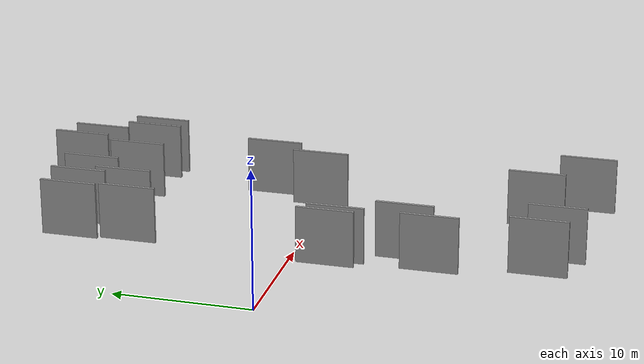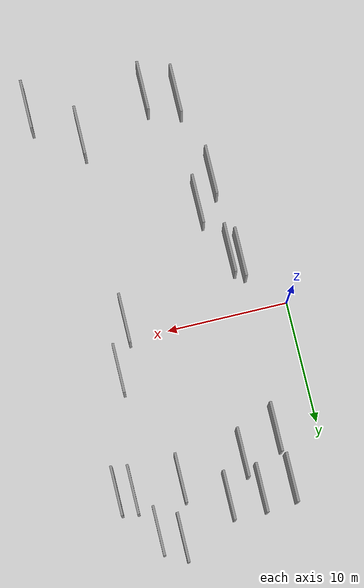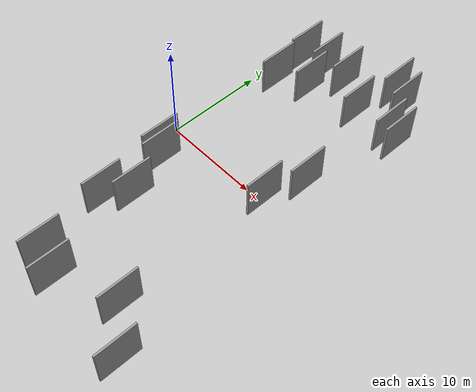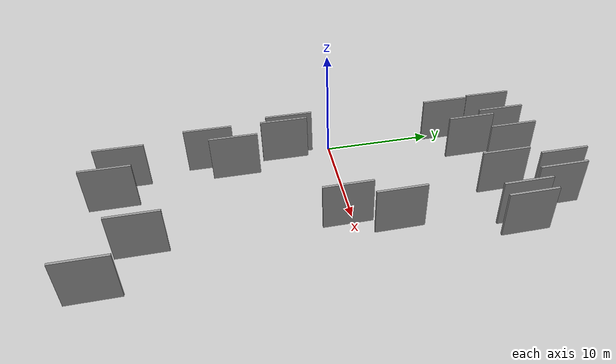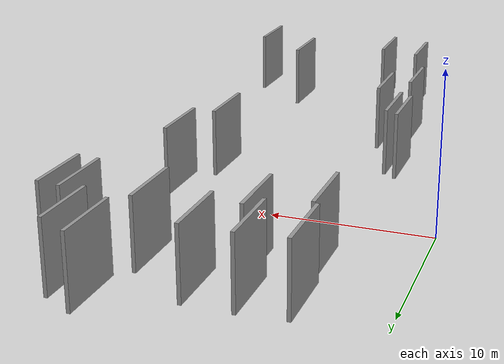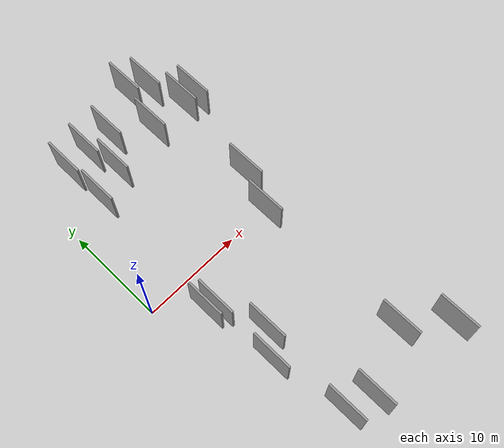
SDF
<sdf version="1.6">
 <world name="default">
  <scene>
   <sky><clouds><speed>12</speed></clouds></sky>
   <ambient>0.4 0.4 0.4 1</ambient>
   <background>0.7 0.7 0.7 1</background>
   <shadows>1</shadows>
  </scene>
  <gravity>0 0 -9.8066</gravity>
  <magnetic_field>6e-06 2.3e-05 -4.2e-05</magnetic_field>
  <physics default="0" name="default_physics" type="ode">
   <ode>
    <solver>
     <type>quick</type>
     <iters>10</iters>
     <sor>1.0</sor>
     <use_dynamic_moi_rescaling>0</use_dynamic_moi_rescaling>
    </solver>
    <constraints>
     <cfm>0</cfm>
     <erp>0.2</erp>
     <contact_max_correcting_vel>100</contact_max_correcting_vel>
     <contact_surface_layer>0.001</contact_surface_layer>
    </constraints>
   </ode>
   <max_step_size>0.004</max_step_size>
   <real_time_factor>1</real_time_factor>
   <real_time_update_rate>250</real_time_update_rate>
  </physics>
  <light name="sun" type="directional">
   <pose>0 0 10 0 0 0</pose>
   <diffuse>0.8 0.8 0.8 1</diffuse>
   <specular>0.2 0.2 0.2 1</specular>
   <attenuation>
    <range>1000</range>
    <constant>0.9</constant>
    <linear>0.01</linear>
    <quadratic>0.001</quadratic>
   </attenuation>
   <direction>-0.5 0.1 -0.9</direction>
  </light>
  <model name="grey_wall_1">
   <static>1</static>
   <pose>14.4978 15.8046 2.5 0.000000 0.000000 1.570796</pose>
   <link name="link">
    <pose>0 0 2.00 0 0 0</pose>
    <collision name="collision"><geometry><box><size>4.00 0.2 4.00</size></box></geometry></collision>
    <visual name="visual">
     <cast_shadows>0</cast_shadows>
     <geometry><box><size>4.00 0.2 4.00</size></box></geometry>
     <material>
      <script>
       <uri>model://grey_wall/materials/scripts</uri>
       <uri>model://grey_wall/materials/textures</uri>
       <name>vrc/grey_wall</name>
      </script>
     </material>
    </visual>
   </link>
  </model>
  <model name="grey_wall_2">
   <static>1</static>
   <pose>16.9413 -19.6625 2.5 0.000000 0.000000 1.570796</pose>
   <link name="link">
    <pose>0 0 2.00 0 0 0</pose>
    <collision name="collision"><geometry><box><size>4.00 0.2 4.00</size></box></geometry></collision>
    <visual name="visual">
     <cast_shadows>0</cast_shadows>
     <geometry><box><size>4.00 0.2 4.00</size></box></geometry>
     <material>
      <script>
       <uri>model://grey_wall/materials/scripts</uri>
       <uri>model://grey_wall/materials/textures</uri>
       <name>vrc/grey_wall</name>
      </script>
     </material>
    </visual>
   </link>
  </model>
  <model name="grey_wall_3">
   <static>1</static>
   <pose>13.2598 -16.6153 2.5 0.000000 0.000000 1.570796</pose>
   <link name="link">
    <pose>0 0 2.00 0 0 0</pose>
    <collision name="collision"><geometry><box><size>4.00 0.2 4.00</size></box></geometry></collision>
    <visual name="visual">
     <cast_shadows>0</cast_shadows>
     <geometry><box><size>4.00 0.2 4.00</size></box></geometry>
     <material>
      <script>
       <uri>model://grey_wall/materials/scripts</uri>
       <uri>model://grey_wall/materials/textures</uri>
       <name>vrc/grey_wall</name>
      </script>
     </material>
    </visual>
   </link>
  </model>
  <model name="grey_wall_4">
   <static>1</static>
   <pose>11.8669 12.2035 2.5 0.000000 0.000000 1.570796</pose>
   <link name="link">
    <pose>0 0 2.00 0 0 0</pose>
    <collision name="collision"><geometry><box><size>4.00 0.2 4.00</size></box></geometry></collision>
    <visual name="visual">
     <cast_shadows>0</cast_shadows>
     <geometry><box><size>4.00 0.2 4.00</size></box></geometry>
     <material>
      <script>
       <uri>model://grey_wall/materials/scripts</uri>
       <uri>model://grey_wall/materials/textures</uri>
       <name>vrc/grey_wall</name>
      </script>
     </material>
    </visual>
   </link>
  </model>
  <model name="grey_wall_5">
   <static>1</static>
   <pose>14.6195 2.6889 2.5 0.000000 0.000000 1.570796</pose>
   <link name="link">
    <pose>0 0 2.00 0 0 0</pose>
    <collision name="collision"><geometry><box><size>4.00 0.2 4.00</size></box></geometry></collision>
    <visual name="visual">
     <cast_shadows>0</cast_shadows>
     <geometry><box><size>4.00 0.2 4.00</size></box></geometry>
     <material>
      <script>
       <uri>model://grey_wall/materials/scripts</uri>
       <uri>model://grey_wall/materials/textures</uri>
       <name>vrc/grey_wall</name>
      </script>
     </material>
    </visual>
   </link>
  </model>
  <model name="grey_wall_6">
   <static>1</static>
   <pose>6.6406 11.3813 2.5 0.000000 0.000000 1.570796</pose>
   <link name="link">
    <pose>0 0 2.00 0 0 0</pose>
    <collision name="collision"><geometry><box><size>4.00 0.2 4.00</size></box></geometry></collision>
    <visual name="visual">
     <cast_shadows>0</cast_shadows>
     <geometry><box><size>4.00 0.2 4.00</size></box></geometry>
     <material>
      <script>
       <uri>model://grey_wall/materials/scripts</uri>
       <uri>model://grey_wall/materials/textures</uri>
       <name>vrc/grey_wall</name>
      </script>
     </material>
    </visual>
   </link>
  </model>
  <model name="grey_wall_7">
   <static>1</static>
   <pose>5.3689 -9.0297 2.5 0.000000 0.000000 1.570796</pose>
   <link name="link">
    <pose>0 0 2.00 0 0 0</pose>
    <collision name="collision"><geometry><box><size>4.00 0.2 4.00</size></box></geometry></collision>
    <visual name="visual">
     <cast_shadows>0</cast_shadows>
     <geometry><box><size>4.00 0.2 4.00</size></box></geometry>
     <material>
      <script>
       <uri>model://grey_wall/materials/scripts</uri>
       <uri>model://grey_wall/materials/textures</uri>
       <name>vrc/grey_wall</name>
      </script>
     </material>
    </visual>
   </link>
  </model>
  <model name="grey_wall_8">
   <static>1</static>
   <pose>3.0686 -4.0976 2.5 0.000000 0.000000 1.570796</pose>
   <link name="link">
    <pose>0 0 2.00 0 0 0</pose>
    <collision name="collision"><geometry><box><size>4.00 0.2 4.00</size></box></geometry></collision>
    <visual name="visual">
     <cast_shadows>0</cast_shadows>
     <geometry><box><size>4.00 0.2 4.00</size></box></geometry>
     <material>
      <script>
       <uri>model://grey_wall/materials/scripts</uri>
       <uri>model://grey_wall/materials/textures</uri>
       <name>vrc/grey_wall</name>
      </script>
     </material>
    </visual>
   </link>
  </model>
  <model name="grey_wall_9">
   <static>1</static>
   <pose>3.3717 14.1880 2.5 0.000000 0.000000 1.570796</pose>
   <link name="link">
    <pose>0 0 2.00 0 0 0</pose>
    <collision name="collision"><geometry><box><size>4.00 0.2 4.00</size></box></geometry></collision>
    <visual name="visual">
     <cast_shadows>0</cast_shadows>
     <geometry><box><size>4.00 0.2 4.00</size></box></geometry>
     <material>
      <script>
       <uri>model://grey_wall/materials/scripts</uri>
       <uri>model://grey_wall/materials/textures</uri>
       <name>vrc/grey_wall</name>
      </script>
     </material>
    </visual>
   </link>
  </model>
  <model name="grey_wall_10">
   <static>1</static>
   <pose>5.8685 14.4140 2.5 0.000000 0.000000 1.570796</pose>
   <link name="link">
    <pose>0 0 2.00 0 0 0</pose>
    <collision name="collision"><geometry><box><size>4.00 0.2 4.00</size></box></geometry></collision>
    <visual name="visual">
     <cast_shadows>0</cast_shadows>
     <geometry><box><size>4.00 0.2 4.00</size></box></geometry>
     <material>
      <script>
       <uri>model://grey_wall/materials/scripts</uri>
       <uri>model://grey_wall/materials/textures</uri>
       <name>vrc/grey_wall</name>
      </script>
     </material>
    </visual>
   </link>
  </model>
  <model name="grey_wall_11">
   <static>1</static>
   <pose>3.7857 -11.0595 2.5 0.000000 0.000000 1.570796</pose>
   <link name="link">
    <pose>0 0 2.00 0 0 0</pose>
    <collision name="collision"><geometry><box><size>4.00 0.2 4.00</size></box></geometry></collision>
    <visual name="visual">
     <cast_shadows>0</cast_shadows>
     <geometry><box><size>4.00 0.2 4.00</size></box></geometry>
     <material>
      <script>
       <uri>model://grey_wall/materials/scripts</uri>
       <uri>model://grey_wall/materials/textures</uri>
       <name>vrc/grey_wall</name>
      </script>
     </material>
    </visual>
   </link>
  </model>
  <model name="grey_wall_12">
   <static>1</static>
   <pose>3.6339 10.0397 2.5 0.000000 0.000000 1.570796</pose>
   <link name="link">
    <pose>0 0 2.00 0 0 0</pose>
    <collision name="collision"><geometry><box><size>4.00 0.2 4.00</size></box></geometry></collision>
    <visual name="visual">
     <cast_shadows>0</cast_shadows>
     <geometry><box><size>4.00 0.2 4.00</size></box></geometry>
     <material>
      <script>
       <uri>model://grey_wall/materials/scripts</uri>
       <uri>model://grey_wall/materials/textures</uri>
       <name>vrc/grey_wall</name>
      </script>
     </material>
    </visual>
   </link>
  </model>
  <model name="grey_wall_13">
   <static>1</static>
   <pose>12.7728 16.7515 2.5 0.000000 0.000000 1.570796</pose>
   <link name="link">
    <pose>0 0 2.00 0 0 0</pose>
    <collision name="collision"><geometry><box><size>4.00 0.2 4.00</size></box></geometry></collision>
    <visual name="visual">
     <cast_shadows>0</cast_shadows>
     <geometry><box><size>4.00 0.2 4.00</size></box></geometry>
     <material>
      <script>
       <uri>model://grey_wall/materials/scripts</uri>
       <uri>model://grey_wall/materials/textures</uri>
       <name>vrc/grey_wall</name>
      </script>
     </material>
    </visual>
   </link>
  </model>
  <model name="grey_wall_14">
   <static>1</static>
   <pose>15.7249 12.2210 2.5 0.000000 0.000000 1.570796</pose>
   <link name="link">
    <pose>0 0 2.00 0 0 0</pose>
    <collision name="collision"><geometry><box><size>4.00 0.2 4.00</size></box></geometry></collision>
    <visual name="visual">
     <cast_shadows>0</cast_shadows>
     <geometry><box><size>4.00 0.2 4.00</size></box></geometry>
     <material>
      <script>
       <uri>model://grey_wall/materials/scripts</uri>
       <uri>model://grey_wall/materials/textures</uri>
       <name>vrc/grey_wall</name>
      </script>
     </material>
    </visual>
   </link>
  </model>
  <model name="grey_wall_15">
   <static>1</static>
   <pose>16.9955 12.0307 2.5 0.000000 0.000000 1.570796</pose>
   <link name="link">
    <pose>0 0 2.00 0 0 0</pose>
    <collision name="collision"><geometry><box><size>4.00 0.2 4.00</size></box></geometry></collision>
    <visual name="visual">
     <cast_shadows>0</cast_shadows>
     <geometry><box><size>4.00 0.2 4.00</size></box></geometry>
     <material>
      <script>
       <uri>model://grey_wall/materials/scripts</uri>
       <uri>model://grey_wall/materials/textures</uri>
       <name>vrc/grey_wall</name>
      </script>
     </material>
    </visual>
   </link>
  </model>
  <model name="grey_wall_16">
   <static>1</static>
   <pose>7.5208 -18.9942 2.5 0.000000 0.000000 1.570796</pose>
   <link name="link">
    <pose>0 0 2.00 0 0 0</pose>
    <collision name="collision"><geometry><box><size>4.00 0.2 4.00</size></box></geometry></collision>
    <visual name="visual">
     <cast_shadows>0</cast_shadows>
     <geometry><box><size>4.00 0.2 4.00</size></box></geometry>
     <material>
      <script>
       <uri>model://grey_wall/materials/scripts</uri>
       <uri>model://grey_wall/materials/textures</uri>
       <name>vrc/grey_wall</name>
      </script>
     </material>
    </visual>
   </link>
  </model>
  <model name="grey_wall_17">
   <static>1</static>
   <pose>13.2595 -1.0885 2.5 0.000000 0.000000 1.570796</pose>
   <link name="link">
    <pose>0 0 2.00 0 0 0</pose>
    <collision name="collision"><geometry><box><size>4.00 0.2 4.00</size></box></geometry></collision>
    <visual name="visual">
     <cast_shadows>0</cast_shadows>
     <geometry><box><size>4.00 0.2 4.00</size></box></geometry>
     <material>
      <script>
       <uri>model://grey_wall/materials/scripts</uri>
       <uri>model://grey_wall/materials/textures</uri>
       <name>vrc/grey_wall</name>
      </script>
     </material>
    </visual>
   </link>
  </model>
  <model name="grey_wall_18">
   <static>1</static>
   <pose>8.4962 14.4006 2.5 0.000000 0.000000 1.570796</pose>
   <link name="link">
    <pose>0 0 2.00 0 0 0</pose>
    <collision name="collision"><geometry><box><size>4.00 0.2 4.00</size></box></geometry></collision>
    <visual name="visual">
     <cast_shadows>0</cast_shadows>
     <geometry><box><size>4.00 0.2 4.00</size></box></geometry>
     <material>
      <script>
       <uri>model://grey_wall/materials/scripts</uri>
       <uri>model://grey_wall/materials/textures</uri>
       <name>vrc/grey_wall</name>
      </script>
     </material>
    </visual>
   </link>
  </model>
  <model name="grey_wall_19">
   <static>1</static>
   <pose>3.8045 -4.6182 2.5 0.000000 0.000000 1.570796</pose>
   <link name="link">
    <pose>0 0 2.00 0 0 0</pose>
    <collision name="collision"><geometry><box><size>4.00 0.2 4.00</size></box></geometry></collision>
    <visual name="visual">
     <cast_shadows>0</cast_shadows>
     <geometry><box><size>4.00 0.2 4.00</size></box></geometry>
     <material>
      <script>
       <uri>model://grey_wall/materials/scripts</uri>
       <uri>model://grey_wall/materials/textures</uri>
       <name>vrc/grey_wall</name>
      </script>
     </material>
    </visual>
   </link>
  </model>
  <model name="grey_wall_20">
   <static>1</static>
   <pose>4.9858 -18.1727 2.5 0.000000 0.000000 1.570796</pose>
   <link name="link">
    <pose>0 0 2.00 0 0 0</pose>
    <collision name="collision"><geometry><box><size>4.00 0.2 4.00</size></box></geometry></collision>
    <visual name="visual">
     <cast_shadows>0</cast_shadows>
     <geometry><box><size>4.00 0.2 4.00</size></box></geometry>
     <material>
      <script>
       <uri>model://grey_wall/materials/scripts</uri>
       <uri>model://grey_wall/materials/textures</uri>
       <name>vrc/grey_wall</name>
      </script>
     </material>
    </visual>
   </link>
  </model>
 </world>
</sdf>
